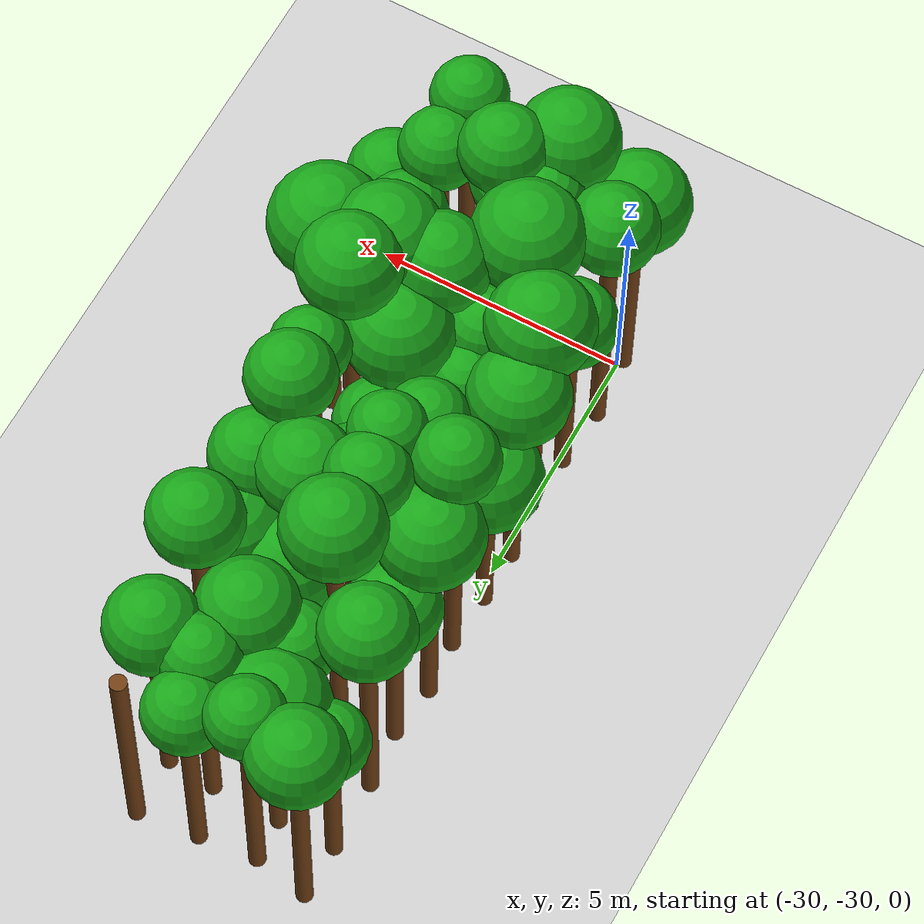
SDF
<sdf version="1.6">
 <world name="forest_world">
  <include><uri>model://sun</uri></include>
  <include><uri>model://ground_plane</uri></include>
  <model name="tree_0_trunk">
   <static>true</static>
   <pose>-30.06 -30.14 2.58 0 0 0</pose>
   <link name="link">
    <collision name="collision">
     <geometry><cylinder><radius>0.16</radius><length>5.17</length></cylinder></geometry>
    </collision>
    <visual name="visual">
     <geometry><cylinder><radius>0.16</radius><length>5.17</length></cylinder></geometry>
     <material><ambient>0.35 0.20 0.05 1</ambient><diffuse>0.45 0.25 0.08 1</diffuse></material>
    </visual>
   </link>
  </model>
  <model name="tree_0_leaf">
   <static>true</static>
   <pose>-30.06 -30.14 5.76 0 0 0</pose>
   <link name="link">
    <collision name="collision"><geometry><sphere><radius>0.98</radius></sphere></geometry></collision>
    <visual name="visual">
     <geometry><sphere><radius>0.98</radius></sphere></geometry>
     <material><ambient>0.05 0.45 0.05 1</ambient><diffuse>0.10 0.65 0.10 1</diffuse></material>
    </visual>
   </link>
  </model>
  <model name="tree_1_trunk">
   <static>true</static>
   <pose>-30.16 -28.88 3.14 0 0 0</pose>
   <link name="link">
    <collision name="collision">
     <geometry><cylinder><radius>0.16</radius><length>6.28</length></cylinder></geometry>
    </collision>
    <visual name="visual">
     <geometry><cylinder><radius>0.16</radius><length>6.28</length></cylinder></geometry>
     <material><ambient>0.35 0.20 0.05 1</ambient><diffuse>0.45 0.25 0.08 1</diffuse></material>
    </visual>
   </link>
  </model>
  <model name="tree_1_leaf">
   <static>true</static>
   <pose>-30.16 -28.88 6.79 0 0 0</pose>
   <link name="link">
    <collision name="collision"><geometry><sphere><radius>0.85</radius></sphere></geometry></collision>
    <visual name="visual">
     <geometry><sphere><radius>0.85</radius></sphere></geometry>
     <material><ambient>0.05 0.45 0.05 1</ambient><diffuse>0.10 0.65 0.10 1</diffuse></material>
    </visual>
   </link>
  </model>
  <model name="tree_2_trunk">
   <static>true</static>
   <pose>-30.05 -27.69 2.35 0 0 0</pose>
   <link name="link">
    <collision name="collision">
     <geometry><cylinder><radius>0.16</radius><length>4.70</length></cylinder></geometry>
    </collision>
    <visual name="visual">
     <geometry><cylinder><radius>0.16</radius><length>4.70</length></cylinder></geometry>
     <material><ambient>0.35 0.20 0.05 1</ambient><diffuse>0.45 0.25 0.08 1</diffuse></material>
    </visual>
   </link>
  </model>
  <model name="tree_2_leaf">
   <static>true</static>
   <pose>-30.05 -27.69 5.21 0 0 0</pose>
   <link name="link">
    <collision name="collision"><geometry><sphere><radius>0.85</radius></sphere></geometry></collision>
    <visual name="visual">
     <geometry><sphere><radius>0.85</radius></sphere></geometry>
     <material><ambient>0.05 0.45 0.05 1</ambient><diffuse>0.10 0.65 0.10 1</diffuse></material>
    </visual>
   </link>
  </model>
  <model name="tree_3_trunk">
   <static>true</static>
   <pose>-29.96 -26.59 3.09 0 0 0</pose>
   <link name="link">
    <collision name="collision">
     <geometry><cylinder><radius>0.16</radius><length>6.19</length></cylinder></geometry>
    </collision>
    <visual name="visual">
     <geometry><cylinder><radius>0.16</radius><length>6.19</length></cylinder></geometry>
     <material><ambient>0.35 0.20 0.05 1</ambient><diffuse>0.45 0.25 0.08 1</diffuse></material>
    </visual>
   </link>
  </model>
  <model name="tree_3_leaf">
   <static>true</static>
   <pose>-29.96 -26.59 6.78 0 0 0</pose>
   <link name="link">
    <collision name="collision"><geometry><sphere><radius>1.00</radius></sphere></geometry></collision>
    <visual name="visual">
     <geometry><sphere><radius>1.00</radius></sphere></geometry>
     <material><ambient>0.05 0.45 0.05 1</ambient><diffuse>0.10 0.65 0.10 1</diffuse></material>
    </visual>
   </link>
  </model>
  <model name="tree_4_trunk">
   <static>true</static>
   <pose>-30.14 -25.50 2.79 0 0 0</pose>
   <link name="link">
    <collision name="collision">
     <geometry><cylinder><radius>0.16</radius><length>5.59</length></cylinder></geometry>
    </collision>
    <visual name="visual">
     <geometry><cylinder><radius>0.16</radius><length>5.59</length></cylinder></geometry>
     <material><ambient>0.35 0.20 0.05 1</ambient><diffuse>0.45 0.25 0.08 1</diffuse></material>
    </visual>
   </link>
  </model>
  <model name="tree_4_leaf">
   <static>true</static>
   <pose>-30.14 -25.50 6.15 0 0 0</pose>
   <link name="link">
    <collision name="collision"><geometry><sphere><radius>0.94</radius></sphere></geometry></collision>
    <visual name="visual">
     <geometry><sphere><radius>0.94</radius></sphere></geometry>
     <material><ambient>0.05 0.45 0.05 1</ambient><diffuse>0.10 0.65 0.10 1</diffuse></material>
    </visual>
   </link>
  </model>
  <model name="tree_5_trunk">
   <static>true</static>
   <pose>-30.12 -24.48 2.09 0 0 0</pose>
   <link name="link">
    <collision name="collision">
     <geometry><cylinder><radius>0.16</radius><length>4.19</length></cylinder></geometry>
    </collision>
    <visual name="visual">
     <geometry><cylinder><radius>0.16</radius><length>4.19</length></cylinder></geometry>
     <material><ambient>0.35 0.20 0.05 1</ambient><diffuse>0.45 0.25 0.08 1</diffuse></material>
    </visual>
   </link>
  </model>
  <model name="tree_5_leaf">
   <static>true</static>
   <pose>-30.12 -24.48 4.79 0 0 0</pose>
   <link name="link">
    <collision name="collision"><geometry><sphere><radius>1.00</radius></sphere></geometry></collision>
    <visual name="visual">
     <geometry><sphere><radius>1.00</radius></sphere></geometry>
     <material><ambient>0.05 0.45 0.05 1</ambient><diffuse>0.10 0.65 0.10 1</diffuse></material>
    </visual>
   </link>
  </model>
  <model name="tree_6_trunk">
   <static>true</static>
   <pose>-30.05 -23.38 3.39 0 0 0</pose>
   <link name="link">
    <collision name="collision">
     <geometry><cylinder><radius>0.16</radius><length>6.77</length></cylinder></geometry>
    </collision>
    <visual name="visual">
     <geometry><cylinder><radius>0.16</radius><length>6.77</length></cylinder></geometry>
     <material><ambient>0.35 0.20 0.05 1</ambient><diffuse>0.45 0.25 0.08 1</diffuse></material>
    </visual>
   </link>
  </model>
  <model name="tree_6_leaf">
   <static>true</static>
   <pose>-30.05 -23.38 7.25 0 0 0</pose>
   <link name="link">
    <collision name="collision"><geometry><sphere><radius>0.79</radius></sphere></geometry></collision>
    <visual name="visual">
     <geometry><sphere><radius>0.79</radius></sphere></geometry>
     <material><ambient>0.05 0.45 0.05 1</ambient><diffuse>0.10 0.65 0.10 1</diffuse></material>
    </visual>
   </link>
  </model>
  <model name="tree_7_trunk">
   <static>true</static>
   <pose>-30.13 -22.36 2.84 0 0 0</pose>
   <link name="link">
    <collision name="collision">
     <geometry><cylinder><radius>0.16</radius><length>5.68</length></cylinder></geometry>
    </collision>
    <visual name="visual">
     <geometry><cylinder><radius>0.16</radius><length>5.68</length></cylinder></geometry>
     <material><ambient>0.35 0.20 0.05 1</ambient><diffuse>0.45 0.25 0.08 1</diffuse></material>
    </visual>
   </link>
  </model>
  <model name="tree_7_leaf">
   <static>true</static>
   <pose>-30.13 -22.36 6.27 0 0 0</pose>
   <link name="link">
    <collision name="collision"><geometry><sphere><radius>0.98</radius></sphere></geometry></collision>
    <visual name="visual">
     <geometry><sphere><radius>0.98</radius></sphere></geometry>
     <material><ambient>0.05 0.45 0.05 1</ambient><diffuse>0.10 0.65 0.10 1</diffuse></material>
    </visual>
   </link>
  </model>
  <model name="tree_8_trunk">
   <static>true</static>
   <pose>-30.00 -21.33 2.36 0 0 0</pose>
   <link name="link">
    <collision name="collision">
     <geometry><cylinder><radius>0.16</radius><length>4.72</length></cylinder></geometry>
    </collision>
    <visual name="visual">
     <geometry><cylinder><radius>0.16</radius><length>4.72</length></cylinder></geometry>
     <material><ambient>0.35 0.20 0.05 1</ambient><diffuse>0.45 0.25 0.08 1</diffuse></material>
    </visual>
   </link>
  </model>
  <model name="tree_8_leaf">
   <static>true</static>
   <pose>-30.00 -21.33 5.23 0 0 0</pose>
   <link name="link">
    <collision name="collision"><geometry><sphere><radius>0.86</radius></sphere></geometry></collision>
    <visual name="visual">
     <geometry><sphere><radius>0.86</radius></sphere></geometry>
     <material><ambient>0.05 0.45 0.05 1</ambient><diffuse>0.10 0.65 0.10 1</diffuse></material>
    </visual>
   </link>
  </model>
  <model name="tree_9_trunk">
   <static>true</static>
   <pose>-30.10 -20.23 2.94 0 0 0</pose>
   <link name="link">
    <collision name="collision">
     <geometry><cylinder><radius>0.16</radius><length>5.88</length></cylinder></geometry>
    </collision>
    <visual name="visual">
     <geometry><cylinder><radius>0.16</radius><length>5.88</length></cylinder></geometry>
     <material><ambient>0.35 0.20 0.05 1</ambient><diffuse>0.45 0.25 0.08 1</diffuse></material>
    </visual>
   </link>
  </model>
  <model name="tree_9_leaf">
   <static>true</static>
   <pose>-30.10 -20.23 6.40 0 0 0</pose>
   <link name="link">
    <collision name="collision"><geometry><sphere><radius>0.87</radius></sphere></geometry></collision>
    <visual name="visual">
     <geometry><sphere><radius>0.87</radius></sphere></geometry>
     <material><ambient>0.05 0.45 0.05 1</ambient><diffuse>0.10 0.65 0.10 1</diffuse></material>
    </visual>
   </link>
  </model>
  <model name="tree_10_trunk">
   <static>true</static>
   <pose>-30.13 -18.85 2.13 0 0 0</pose>
   <link name="link">
    <collision name="collision">
     <geometry><cylinder><radius>0.16</radius><length>4.27</length></cylinder></geometry>
    </collision>
    <visual name="visual">
     <geometry><cylinder><radius>0.16</radius><length>4.27</length></cylinder></geometry>
     <material><ambient>0.35 0.20 0.05 1</ambient><diffuse>0.45 0.25 0.08 1</diffuse></material>
    </visual>
   </link>
  </model>
  <model name="tree_10_leaf">
   <static>true</static>
   <pose>-30.13 -18.85 4.70 0 0 0</pose>
   <link name="link">
    <collision name="collision"><geometry><sphere><radius>0.72</radius></sphere></geometry></collision>
    <visual name="visual">
     <geometry><sphere><radius>0.72</radius></sphere></geometry>
     <material><ambient>0.05 0.45 0.05 1</ambient><diffuse>0.10 0.65 0.10 1</diffuse></material>
    </visual>
   </link>
  </model>
  <model name="tree_11_trunk">
   <static>true</static>
   <pose>-30.11 -17.81 2.78 0 0 0</pose>
   <link name="link">
    <collision name="collision">
     <geometry><cylinder><radius>0.16</radius><length>5.57</length></cylinder></geometry>
    </collision>
    <visual name="visual">
     <geometry><cylinder><radius>0.16</radius><length>5.57</length></cylinder></geometry>
     <material><ambient>0.35 0.20 0.05 1</ambient><diffuse>0.45 0.25 0.08 1</diffuse></material>
    </visual>
   </link>
  </model>
  <model name="tree_11_leaf">
   <static>true</static>
   <pose>-30.11 -17.81 6.11 0 0 0</pose>
   <link name="link">
    <collision name="collision"><geometry><sphere><radius>0.90</radius></sphere></geometry></collision>
    <visual name="visual">
     <geometry><sphere><radius>0.90</radius></sphere></geometry>
     <material><ambient>0.05 0.45 0.05 1</ambient><diffuse>0.10 0.65 0.10 1</diffuse></material>
    </visual>
   </link>
  </model>
  <model name="tree_55_trunk">
   <static>true</static>
   <pose>-28.73 -29.90 3.30 0 0 0</pose>
   <link name="link">
    <collision name="collision">
     <geometry><cylinder><radius>0.16</radius><length>6.59</length></cylinder></geometry>
    </collision>
    <visual name="visual">
     <geometry><cylinder><radius>0.16</radius><length>6.59</length></cylinder></geometry>
     <material><ambient>0.35 0.20 0.05 1</ambient><diffuse>0.45 0.25 0.08 1</diffuse></material>
    </visual>
   </link>
  </model>
  <model name="tree_55_leaf">
   <static>true</static>
   <pose>-28.73 -29.90 7.17 0 0 0</pose>
   <link name="link">
    <collision name="collision"><geometry><sphere><radius>0.96</radius></sphere></geometry></collision>
    <visual name="visual">
     <geometry><sphere><radius>0.96</radius></sphere></geometry>
     <material><ambient>0.05 0.45 0.05 1</ambient><diffuse>0.10 0.65 0.10 1</diffuse></material>
    </visual>
   </link>
  </model>
  <model name="tree_56_trunk">
   <static>true</static>
   <pose>-28.81 -28.86 3.19 0 0 0</pose>
   <link name="link">
    <collision name="collision">
     <geometry><cylinder><radius>0.16</radius><length>6.38</length></cylinder></geometry>
    </collision>
    <visual name="visual">
     <geometry><cylinder><radius>0.16</radius><length>6.38</length></cylinder></geometry>
     <material><ambient>0.35 0.20 0.05 1</ambient><diffuse>0.45 0.25 0.08 1</diffuse></material>
    </visual>
   </link>
  </model>
  <model name="tree_56_leaf">
   <static>true</static>
   <pose>-28.81 -28.86 6.83 0 0 0</pose>
   <link name="link">
    <collision name="collision"><geometry><sphere><radius>0.74</radius></sphere></geometry></collision>
    <visual name="visual">
     <geometry><sphere><radius>0.74</radius></sphere></geometry>
     <material><ambient>0.05 0.45 0.05 1</ambient><diffuse>0.10 0.65 0.10 1</diffuse></material>
    </visual>
   </link>
  </model>
  <model name="tree_57_trunk">
   <static>true</static>
   <pose>-29.00 -27.91 3.19 0 0 0</pose>
   <link name="link">
    <collision name="collision">
     <geometry><cylinder><radius>0.16</radius><length>6.38</length></cylinder></geometry>
    </collision>
    <visual name="visual">
     <geometry><cylinder><radius>0.16</radius><length>6.38</length></cylinder></geometry>
     <material><ambient>0.35 0.20 0.05 1</ambient><diffuse>0.45 0.25 0.08 1</diffuse></material>
    </visual>
   </link>
  </model>
  <model name="tree_57_leaf">
   <static>true</static>
   <pose>-29.00 -27.91 7.01 0 0 0</pose>
   <link name="link">
    <collision name="collision"><geometry><sphere><radius>1.05</radius></sphere></geometry></collision>
    <visual name="visual">
     <geometry><sphere><radius>1.05</radius></sphere></geometry>
     <material><ambient>0.05 0.45 0.05 1</ambient><diffuse>0.10 0.65 0.10 1</diffuse></material>
    </visual>
   </link>
  </model>
  <model name="tree_58_trunk">
   <static>true</static>
   <pose>-28.90 -26.54 2.71 0 0 0</pose>
   <link name="link">
    <collision name="collision">
     <geometry><cylinder><radius>0.16</radius><length>5.42</length></cylinder></geometry>
    </collision>
    <visual name="visual">
     <geometry><cylinder><radius>0.16</radius><length>5.42</length></cylinder></geometry>
     <material><ambient>0.35 0.20 0.05 1</ambient><diffuse>0.45 0.25 0.08 1</diffuse></material>
    </visual>
   </link>
  </model>
  <model name="tree_58_leaf">
   <static>true</static>
   <pose>-28.90 -26.54 5.88 0 0 0</pose>
   <link name="link">
    <collision name="collision"><geometry><sphere><radius>0.76</radius></sphere></geometry></collision>
    <visual name="visual">
     <geometry><sphere><radius>0.76</radius></sphere></geometry>
     <material><ambient>0.05 0.45 0.05 1</ambient><diffuse>0.10 0.65 0.10 1</diffuse></material>
    </visual>
   </link>
  </model>
  <model name="tree_59_trunk">
   <static>true</static>
   <pose>-29.00 -25.64 2.53 0 0 0</pose>
   <link name="link">
    <collision name="collision">
     <geometry><cylinder><radius>0.16</radius><length>5.06</length></cylinder></geometry>
    </collision>
    <visual name="visual">
     <geometry><cylinder><radius>0.16</radius><length>5.06</length></cylinder></geometry>
     <material><ambient>0.35 0.20 0.05 1</ambient><diffuse>0.45 0.25 0.08 1</diffuse></material>
    </visual>
   </link>
  </model>
  <model name="tree_59_leaf">
   <static>true</static>
   <pose>-29.00 -25.64 5.50 0 0 0</pose>
   <link name="link">
    <collision name="collision"><geometry><sphere><radius>0.72</radius></sphere></geometry></collision>
    <visual name="visual">
     <geometry><sphere><radius>0.72</radius></sphere></geometry>
     <material><ambient>0.05 0.45 0.05 1</ambient><diffuse>0.10 0.65 0.10 1</diffuse></material>
    </visual>
   </link>
  </model>
  <model name="tree_60_trunk">
   <static>true</static>
   <pose>-28.97 -24.34 2.83 0 0 0</pose>
   <link name="link">
    <collision name="collision">
     <geometry><cylinder><radius>0.16</radius><length>5.65</length></cylinder></geometry>
    </collision>
    <visual name="visual">
     <geometry><cylinder><radius>0.16</radius><length>5.65</length></cylinder></geometry>
     <material><ambient>0.35 0.20 0.05 1</ambient><diffuse>0.45 0.25 0.08 1</diffuse></material>
    </visual>
   </link>
  </model>
  <model name="tree_60_leaf">
   <static>true</static>
   <pose>-28.97 -24.34 6.11 0 0 0</pose>
   <link name="link">
    <collision name="collision"><geometry><sphere><radius>0.77</radius></sphere></geometry></collision>
    <visual name="visual">
     <geometry><sphere><radius>0.77</radius></sphere></geometry>
     <material><ambient>0.05 0.45 0.05 1</ambient><diffuse>0.10 0.65 0.10 1</diffuse></material>
    </visual>
   </link>
  </model>
  <model name="tree_61_trunk">
   <static>true</static>
   <pose>-28.79 -23.30 3.43 0 0 0</pose>
   <link name="link">
    <collision name="collision">
     <geometry><cylinder><radius>0.16</radius><length>6.85</length></cylinder></geometry>
    </collision>
    <visual name="visual">
     <geometry><cylinder><radius>0.16</radius><length>6.85</length></cylinder></geometry>
     <material><ambient>0.35 0.20 0.05 1</ambient><diffuse>0.45 0.25 0.08 1</diffuse></material>
    </visual>
   </link>
  </model>
  <model name="tree_61_leaf">
   <static>true</static>
   <pose>-28.79 -23.30 7.28 0 0 0</pose>
   <link name="link">
    <collision name="collision"><geometry><sphere><radius>0.71</radius></sphere></geometry></collision>
    <visual name="visual">
     <geometry><sphere><radius>0.71</radius></sphere></geometry>
     <material><ambient>0.05 0.45 0.05 1</ambient><diffuse>0.10 0.65 0.10 1</diffuse></material>
    </visual>
   </link>
  </model>
  <model name="tree_62_trunk">
   <static>true</static>
   <pose>-28.91 -22.41 3.39 0 0 0</pose>
   <link name="link">
    <collision name="collision">
     <geometry><cylinder><radius>0.16</radius><length>6.79</length></cylinder></geometry>
    </collision>
    <visual name="visual">
     <geometry><cylinder><radius>0.16</radius><length>6.79</length></cylinder></geometry>
     <material><ambient>0.35 0.20 0.05 1</ambient><diffuse>0.45 0.25 0.08 1</diffuse></material>
    </visual>
   </link>
  </model>
  <model name="tree_62_leaf">
   <static>true</static>
   <pose>-28.91 -22.41 7.25 0 0 0</pose>
   <link name="link">
    <collision name="collision"><geometry><sphere><radius>0.78</radius></sphere></geometry></collision>
    <visual name="visual">
     <geometry><sphere><radius>0.78</radius></sphere></geometry>
     <material><ambient>0.05 0.45 0.05 1</ambient><diffuse>0.10 0.65 0.10 1</diffuse></material>
    </visual>
   </link>
  </model>
  <model name="tree_63_trunk">
   <static>true</static>
   <pose>-28.93 -21.19 3.44 0 0 0</pose>
   <link name="link">
    <collision name="collision">
     <geometry><cylinder><radius>0.16</radius><length>6.89</length></cylinder></geometry>
    </collision>
    <visual name="visual">
     <geometry><cylinder><radius>0.16</radius><length>6.89</length></cylinder></geometry>
     <material><ambient>0.35 0.20 0.05 1</ambient><diffuse>0.45 0.25 0.08 1</diffuse></material>
    </visual>
   </link>
  </model>
  <model name="tree_63_leaf">
   <static>true</static>
   <pose>-28.93 -21.19 7.45 0 0 0</pose>
   <link name="link">
    <collision name="collision"><geometry><sphere><radius>0.94</radius></sphere></geometry></collision>
    <visual name="visual">
     <geometry><sphere><radius>0.94</radius></sphere></geometry>
     <material><ambient>0.05 0.45 0.05 1</ambient><diffuse>0.10 0.65 0.10 1</diffuse></material>
    </visual>
   </link>
  </model>
  <model name="tree_64_trunk">
   <static>true</static>
   <pose>-28.81 -19.97 2.31 0 0 0</pose>
   <link name="link">
    <collision name="collision">
     <geometry><cylinder><radius>0.16</radius><length>4.63</length></cylinder></geometry>
    </collision>
    <visual name="visual">
     <geometry><cylinder><radius>0.16</radius><length>4.63</length></cylinder></geometry>
     <material><ambient>0.35 0.20 0.05 1</ambient><diffuse>0.45 0.25 0.08 1</diffuse></material>
    </visual>
   </link>
  </model>
  <model name="tree_64_leaf">
   <static>true</static>
   <pose>-28.81 -19.97 5.10 0 0 0</pose>
   <link name="link">
    <collision name="collision"><geometry><sphere><radius>0.79</radius></sphere></geometry></collision>
    <visual name="visual">
     <geometry><sphere><radius>0.79</radius></sphere></geometry>
     <material><ambient>0.05 0.45 0.05 1</ambient><diffuse>0.10 0.65 0.10 1</diffuse></material>
    </visual>
   </link>
  </model>
  <model name="tree_65_trunk">
   <static>true</static>
   <pose>-29.01 -18.82 2.16 0 0 0</pose>
   <link name="link">
    <collision name="collision">
     <geometry><cylinder><radius>0.16</radius><length>4.33</length></cylinder></geometry>
    </collision>
    <visual name="visual">
     <geometry><cylinder><radius>0.16</radius><length>4.33</length></cylinder></geometry>
     <material><ambient>0.35 0.20 0.05 1</ambient><diffuse>0.45 0.25 0.08 1</diffuse></material>
    </visual>
   </link>
  </model>
  <model name="tree_65_leaf">
   <static>true</static>
   <pose>-29.01 -18.82 4.97 0 0 0</pose>
   <link name="link">
    <collision name="collision"><geometry><sphere><radius>1.08</radius></sphere></geometry></collision>
    <visual name="visual">
     <geometry><sphere><radius>1.08</radius></sphere></geometry>
     <material><ambient>0.05 0.45 0.05 1</ambient><diffuse>0.10 0.65 0.10 1</diffuse></material>
    </visual>
   </link>
  </model>
  <model name="tree_66_trunk">
   <static>true</static>
   <pose>-29.04 -18.00 2.86 0 0 0</pose>
   <link name="link">
    <collision name="collision">
     <geometry><cylinder><radius>0.16</radius><length>5.73</length></cylinder></geometry>
    </collision>
    <visual name="visual">
     <geometry><cylinder><radius>0.16</radius><length>5.73</length></cylinder></geometry>
     <material><ambient>0.35 0.20 0.05 1</ambient><diffuse>0.45 0.25 0.08 1</diffuse></material>
    </visual>
   </link>
  </model>
  <model name="tree_66_leaf">
   <static>true</static>
   <pose>-29.04 -18.00 6.17 0 0 0</pose>
   <link name="link">
    <collision name="collision"><geometry><sphere><radius>0.73</radius></sphere></geometry></collision>
    <visual name="visual">
     <geometry><sphere><radius>0.73</radius></sphere></geometry>
     <material><ambient>0.05 0.45 0.05 1</ambient><diffuse>0.10 0.65 0.10 1</diffuse></material>
    </visual>
   </link>
  </model>
  <model name="tree_110_trunk">
   <static>true</static>
   <pose>-27.72 -30.18 2.09 0 0 0</pose>
   <link name="link">
    <collision name="collision">
     <geometry><cylinder><radius>0.16</radius><length>4.19</length></cylinder></geometry>
    </collision>
    <visual name="visual">
     <geometry><cylinder><radius>0.16</radius><length>4.19</length></cylinder></geometry>
     <material><ambient>0.35 0.20 0.05 1</ambient><diffuse>0.45 0.25 0.08 1</diffuse></material>
    </visual>
   </link>
  </model>
  <model name="tree_110_leaf">
   <static>true</static>
   <pose>-27.72 -30.18 4.77 0 0 0</pose>
   <link name="link">
    <collision name="collision"><geometry><sphere><radius>0.97</radius></sphere></geometry></collision>
    <visual name="visual">
     <geometry><sphere><radius>0.97</radius></sphere></geometry>
     <material><ambient>0.05 0.45 0.05 1</ambient><diffuse>0.10 0.65 0.10 1</diffuse></material>
    </visual>
   </link>
  </model>
  <model name="tree_111_trunk">
   <static>true</static>
   <pose>-27.91 -29.05 3.46 0 0 0</pose>
   <link name="link">
    <collision name="collision">
     <geometry><cylinder><radius>0.16</radius><length>6.93</length></cylinder></geometry>
    </collision>
    <visual name="visual">
     <geometry><cylinder><radius>0.16</radius><length>6.93</length></cylinder></geometry>
     <material><ambient>0.35 0.20 0.05 1</ambient><diffuse>0.45 0.25 0.08 1</diffuse></material>
    </visual>
   </link>
  </model>
  <model name="tree_111_leaf">
   <static>true</static>
   <pose>-27.91 -29.05 7.43 0 0 0</pose>
   <link name="link">
    <collision name="collision"><geometry><sphere><radius>0.83</radius></sphere></geometry></collision>
    <visual name="visual">
     <geometry><sphere><radius>0.83</radius></sphere></geometry>
     <material><ambient>0.05 0.45 0.05 1</ambient><diffuse>0.10 0.65 0.10 1</diffuse></material>
    </visual>
   </link>
  </model>
  <model name="tree_112_trunk">
   <static>true</static>
   <pose>-27.86 -27.77 2.00 0 0 0</pose>
   <link name="link">
    <collision name="collision">
     <geometry><cylinder><radius>0.16</radius><length>4.00</length></cylinder></geometry>
    </collision>
    <visual name="visual">
     <geometry><cylinder><radius>0.16</radius><length>4.00</length></cylinder></geometry>
     <material><ambient>0.35 0.20 0.05 1</ambient><diffuse>0.45 0.25 0.08 1</diffuse></material>
    </visual>
   </link>
  </model>
  <model name="tree_112_leaf">
   <static>true</static>
   <pose>-27.86 -27.77 4.64 0 0 0</pose>
   <link name="link">
    <collision name="collision"><geometry><sphere><radius>1.06</radius></sphere></geometry></collision>
    <visual name="visual">
     <geometry><sphere><radius>1.06</radius></sphere></geometry>
     <material><ambient>0.05 0.45 0.05 1</ambient><diffuse>0.10 0.65 0.10 1</diffuse></material>
    </visual>
   </link>
  </model>
  <model name="tree_113_trunk">
   <static>true</static>
   <pose>-27.88 -26.84 3.13 0 0 0</pose>
   <link name="link">
    <collision name="collision">
     <geometry><cylinder><radius>0.16</radius><length>6.26</length></cylinder></geometry>
    </collision>
    <visual name="visual">
     <geometry><cylinder><radius>0.16</radius><length>6.26</length></cylinder></geometry>
     <material><ambient>0.35 0.20 0.05 1</ambient><diffuse>0.45 0.25 0.08 1</diffuse></material>
    </visual>
   </link>
  </model>
  <model name="tree_113_leaf">
   <static>true</static>
   <pose>-27.88 -26.84 6.82 0 0 0</pose>
   <link name="link">
    <collision name="collision"><geometry><sphere><radius>0.93</radius></sphere></geometry></collision>
    <visual name="visual">
     <geometry><sphere><radius>0.93</radius></sphere></geometry>
     <material><ambient>0.05 0.45 0.05 1</ambient><diffuse>0.10 0.65 0.10 1</diffuse></material>
    </visual>
   </link>
  </model>
  <model name="tree_114_trunk">
   <static>true</static>
   <pose>-27.73 -25.58 2.79 0 0 0</pose>
   <link name="link">
    <collision name="collision">
     <geometry><cylinder><radius>0.16</radius><length>5.58</length></cylinder></geometry>
    </collision>
    <visual name="visual">
     <geometry><cylinder><radius>0.16</radius><length>5.58</length></cylinder></geometry>
     <material><ambient>0.35 0.20 0.05 1</ambient><diffuse>0.45 0.25 0.08 1</diffuse></material>
    </visual>
   </link>
  </model>
  <model name="tree_114_leaf">
   <static>true</static>
   <pose>-27.73 -25.58 6.19 0 0 0</pose>
   <link name="link">
    <collision name="collision"><geometry><sphere><radius>1.01</radius></sphere></geometry></collision>
    <visual name="visual">
     <geometry><sphere><radius>1.01</radius></sphere></geometry>
     <material><ambient>0.05 0.45 0.05 1</ambient><diffuse>0.10 0.65 0.10 1</diffuse></material>
    </visual>
   </link>
  </model>
  <model name="tree_115_trunk">
   <static>true</static>
   <pose>-27.90 -24.61 2.03 0 0 0</pose>
   <link name="link">
    <collision name="collision">
     <geometry><cylinder><radius>0.16</radius><length>4.07</length></cylinder></geometry>
    </collision>
    <visual name="visual">
     <geometry><cylinder><radius>0.16</radius><length>4.07</length></cylinder></geometry>
     <material><ambient>0.35 0.20 0.05 1</ambient><diffuse>0.45 0.25 0.08 1</diffuse></material>
    </visual>
   </link>
  </model>
  <model name="tree_115_leaf">
   <static>true</static>
   <pose>-27.90 -24.61 4.59 0 0 0</pose>
   <link name="link">
    <collision name="collision"><geometry><sphere><radius>0.87</radius></sphere></geometry></collision>
    <visual name="visual">
     <geometry><sphere><radius>0.87</radius></sphere></geometry>
     <material><ambient>0.05 0.45 0.05 1</ambient><diffuse>0.10 0.65 0.10 1</diffuse></material>
    </visual>
   </link>
  </model>
  <model name="tree_116_trunk">
   <static>true</static>
   <pose>-27.92 -23.53 2.10 0 0 0</pose>
   <link name="link">
    <collision name="collision">
     <geometry><cylinder><radius>0.16</radius><length>4.20</length></cylinder></geometry>
    </collision>
    <visual name="visual">
     <geometry><cylinder><radius>0.16</radius><length>4.20</length></cylinder></geometry>
     <material><ambient>0.35 0.20 0.05 1</ambient><diffuse>0.45 0.25 0.08 1</diffuse></material>
    </visual>
   </link>
  </model>
  <model name="tree_116_leaf">
   <static>true</static>
   <pose>-27.92 -23.53 4.69 0 0 0</pose>
   <link name="link">
    <collision name="collision"><geometry><sphere><radius>0.82</radius></sphere></geometry></collision>
    <visual name="visual">
     <geometry><sphere><radius>0.82</radius></sphere></geometry>
     <material><ambient>0.05 0.45 0.05 1</ambient><diffuse>0.10 0.65 0.10 1</diffuse></material>
    </visual>
   </link>
  </model>
  <model name="tree_117_trunk">
   <static>true</static>
   <pose>-27.71 -22.36 3.00 0 0 0</pose>
   <link name="link">
    <collision name="collision">
     <geometry><cylinder><radius>0.16</radius><length>5.99</length></cylinder></geometry>
    </collision>
    <visual name="visual">
     <geometry><cylinder><radius>0.16</radius><length>5.99</length></cylinder></geometry>
     <material><ambient>0.35 0.20 0.05 1</ambient><diffuse>0.45 0.25 0.08 1</diffuse></material>
    </visual>
   </link>
  </model>
  <model name="tree_117_leaf">
   <static>true</static>
   <pose>-27.71 -22.36 6.53 0 0 0</pose>
   <link name="link">
    <collision name="collision"><geometry><sphere><radius>0.90</radius></sphere></geometry></collision>
    <visual name="visual">
     <geometry><sphere><radius>0.90</radius></sphere></geometry>
     <material><ambient>0.05 0.45 0.05 1</ambient><diffuse>0.10 0.65 0.10 1</diffuse></material>
    </visual>
   </link>
  </model>
  <model name="tree_118_trunk">
   <static>true</static>
   <pose>-27.91 -21.31 2.21 0 0 0</pose>
   <link name="link">
    <collision name="collision">
     <geometry><cylinder><radius>0.16</radius><length>4.43</length></cylinder></geometry>
    </collision>
    <visual name="visual">
     <geometry><cylinder><radius>0.16</radius><length>4.43</length></cylinder></geometry>
     <material><ambient>0.35 0.20 0.05 1</ambient><diffuse>0.45 0.25 0.08 1</diffuse></material>
    </visual>
   </link>
  </model>
  <model name="tree_118_leaf">
   <static>true</static>
   <pose>-27.91 -21.31 5.03 0 0 0</pose>
   <link name="link">
    <collision name="collision"><geometry><sphere><radius>1.00</radius></sphere></geometry></collision>
    <visual name="visual">
     <geometry><sphere><radius>1.00</radius></sphere></geometry>
     <material><ambient>0.05 0.45 0.05 1</ambient><diffuse>0.10 0.65 0.10 1</diffuse></material>
    </visual>
   </link>
  </model>
  <model name="tree_119_trunk">
   <static>true</static>
   <pose>-27.94 -19.94 2.53 0 0 0</pose>
   <link name="link">
    <collision name="collision">
     <geometry><cylinder><radius>0.16</radius><length>5.06</length></cylinder></geometry>
    </collision>
    <visual name="visual">
     <geometry><cylinder><radius>0.16</radius><length>5.06</length></cylinder></geometry>
     <material><ambient>0.35 0.20 0.05 1</ambient><diffuse>0.45 0.25 0.08 1</diffuse></material>
    </visual>
   </link>
  </model>
  <model name="tree_119_leaf">
   <static>true</static>
   <pose>-27.94 -19.94 5.62 0 0 0</pose>
   <link name="link">
    <collision name="collision"><geometry><sphere><radius>0.94</radius></sphere></geometry></collision>
    <visual name="visual">
     <geometry><sphere><radius>0.94</radius></sphere></geometry>
     <material><ambient>0.05 0.45 0.05 1</ambient><diffuse>0.10 0.65 0.10 1</diffuse></material>
    </visual>
   </link>
  </model>
  <model name="tree_120_trunk">
   <static>true</static>
   <pose>-27.66 -18.82 2.57 0 0 0</pose>
   <link name="link">
    <collision name="collision">
     <geometry><cylinder><radius>0.16</radius><length>5.13</length></cylinder></geometry>
    </collision>
    <visual name="visual">
     <geometry><cylinder><radius>0.16</radius><length>5.13</length></cylinder></geometry>
     <material><ambient>0.35 0.20 0.05 1</ambient><diffuse>0.45 0.25 0.08 1</diffuse></material>
    </visual>
   </link>
  </model>
  <model name="tree_120_leaf">
   <static>true</static>
   <pose>-27.66 -18.82 5.60 0 0 0</pose>
   <link name="link">
    <collision name="collision"><geometry><sphere><radius>0.77</radius></sphere></geometry></collision>
    <visual name="visual">
     <geometry><sphere><radius>0.77</radius></sphere></geometry>
     <material><ambient>0.05 0.45 0.05 1</ambient><diffuse>0.10 0.65 0.10 1</diffuse></material>
    </visual>
   </link>
  </model>
  <model name="tree_121_trunk">
   <static>true</static>
   <pose>-27.91 -17.87 2.48 0 0 0</pose>
   <link name="link">
    <collision name="collision">
     <geometry><cylinder><radius>0.16</radius><length>4.97</length></cylinder></geometry>
    </collision>
    <visual name="visual">
     <geometry><cylinder><radius>0.16</radius><length>4.97</length></cylinder></geometry>
     <material><ambient>0.35 0.20 0.05 1</ambient><diffuse>0.45 0.25 0.08 1</diffuse></material>
    </visual>
   </link>
  </model>
  <model name="tree_121_leaf">
   <static>true</static>
   <pose>-27.91 -17.87 5.43 0 0 0</pose>
   <link name="link">
    <collision name="collision"><geometry><sphere><radius>0.77</radius></sphere></geometry></collision>
    <visual name="visual">
     <geometry><sphere><radius>0.77</radius></sphere></geometry>
     <material><ambient>0.05 0.45 0.05 1</ambient><diffuse>0.10 0.65 0.10 1</diffuse></material>
    </visual>
   </link>
  </model>
  <model name="tree_165_trunk">
   <static>true</static>
   <pose>-26.79 -29.87 3.37 0 0 0</pose>
   <link name="link">
    <collision name="collision">
     <geometry><cylinder><radius>0.16</radius><length>6.74</length></cylinder></geometry>
    </collision>
    <visual name="visual">
     <geometry><cylinder><radius>0.16</radius><length>6.74</length></cylinder></geometry>
     <material><ambient>0.35 0.20 0.05 1</ambient><diffuse>0.45 0.25 0.08 1</diffuse></material>
    </visual>
   </link>
  </model>
  <model name="tree_165_leaf">
   <static>true</static>
   <pose>-26.79 -29.87 7.17 0 0 0</pose>
   <link name="link">
    <collision name="collision"><geometry><sphere><radius>0.72</radius></sphere></geometry></collision>
    <visual name="visual">
     <geometry><sphere><radius>0.72</radius></sphere></geometry>
     <material><ambient>0.05 0.45 0.05 1</ambient><diffuse>0.10 0.65 0.10 1</diffuse></material>
    </visual>
   </link>
  </model>
  <model name="tree_166_trunk">
   <static>true</static>
   <pose>-26.78 -28.84 3.20 0 0 0</pose>
   <link name="link">
    <collision name="collision">
     <geometry><cylinder><radius>0.16</radius><length>6.40</length></cylinder></geometry>
    </collision>
    <visual name="visual">
     <geometry><cylinder><radius>0.16</radius><length>6.40</length></cylinder></geometry>
     <material><ambient>0.35 0.20 0.05 1</ambient><diffuse>0.45 0.25 0.08 1</diffuse></material>
    </visual>
   </link>
  </model>
  <model name="tree_166_leaf">
   <static>true</static>
   <pose>-26.78 -28.84 6.87 0 0 0</pose>
   <link name="link">
    <collision name="collision"><geometry><sphere><radius>0.77</radius></sphere></geometry></collision>
    <visual name="visual">
     <geometry><sphere><radius>0.77</radius></sphere></geometry>
     <material><ambient>0.05 0.45 0.05 1</ambient><diffuse>0.10 0.65 0.10 1</diffuse></material>
    </visual>
   </link>
  </model>
  <model name="tree_167_trunk">
   <static>true</static>
   <pose>-26.68 -27.72 2.87 0 0 0</pose>
   <link name="link">
    <collision name="collision">
     <geometry><cylinder><radius>0.16</radius><length>5.74</length></cylinder></geometry>
    </collision>
    <visual name="visual">
     <geometry><cylinder><radius>0.16</radius><length>5.74</length></cylinder></geometry>
     <material><ambient>0.35 0.20 0.05 1</ambient><diffuse>0.45 0.25 0.08 1</diffuse></material>
    </visual>
   </link>
  </model>
  <model name="tree_167_leaf">
   <static>true</static>
   <pose>-26.68 -27.72 6.21 0 0 0</pose>
   <link name="link">
    <collision name="collision"><geometry><sphere><radius>0.79</radius></sphere></geometry></collision>
    <visual name="visual">
     <geometry><sphere><radius>0.79</radius></sphere></geometry>
     <material><ambient>0.05 0.45 0.05 1</ambient><diffuse>0.10 0.65 0.10 1</diffuse></material>
    </visual>
   </link>
  </model>
  <model name="tree_168_trunk">
   <static>true</static>
   <pose>-26.86 -26.74 3.16 0 0 0</pose>
   <link name="link">
    <collision name="collision">
     <geometry><cylinder><radius>0.16</radius><length>6.32</length></cylinder></geometry>
    </collision>
    <visual name="visual">
     <geometry><cylinder><radius>0.16</radius><length>6.32</length></cylinder></geometry>
     <material><ambient>0.35 0.20 0.05 1</ambient><diffuse>0.45 0.25 0.08 1</diffuse></material>
    </visual>
   </link>
  </model>
  <model name="tree_168_leaf">
   <static>true</static>
   <pose>-26.86 -26.74 6.95 0 0 0</pose>
   <link name="link">
    <collision name="collision"><geometry><sphere><radius>1.04</radius></sphere></geometry></collision>
    <visual name="visual">
     <geometry><sphere><radius>1.04</radius></sphere></geometry>
     <material><ambient>0.05 0.45 0.05 1</ambient><diffuse>0.10 0.65 0.10 1</diffuse></material>
    </visual>
   </link>
  </model>
  <model name="tree_169_trunk">
   <static>true</static>
   <pose>-26.68 -25.74 3.42 0 0 0</pose>
   <link name="link">
    <collision name="collision">
     <geometry><cylinder><radius>0.16</radius><length>6.83</length></cylinder></geometry>
    </collision>
    <visual name="visual">
     <geometry><cylinder><radius>0.16</radius><length>6.83</length></cylinder></geometry>
     <material><ambient>0.35 0.20 0.05 1</ambient><diffuse>0.45 0.25 0.08 1</diffuse></material>
    </visual>
   </link>
  </model>
  <model name="tree_169_leaf">
   <static>true</static>
   <pose>-26.68 -25.74 7.40 0 0 0</pose>
   <link name="link">
    <collision name="collision"><geometry><sphere><radius>0.96</radius></sphere></geometry></collision>
    <visual name="visual">
     <geometry><sphere><radius>0.96</radius></sphere></geometry>
     <material><ambient>0.05 0.45 0.05 1</ambient><diffuse>0.10 0.65 0.10 1</diffuse></material>
    </visual>
   </link>
  </model>
  <model name="tree_170_trunk">
   <static>true</static>
   <pose>-26.67 -24.36 3.10 0 0 0</pose>
   <link name="link">
    <collision name="collision">
     <geometry><cylinder><radius>0.16</radius><length>6.20</length></cylinder></geometry>
    </collision>
    <visual name="visual">
     <geometry><cylinder><radius>0.16</radius><length>6.20</length></cylinder></geometry>
     <material><ambient>0.35 0.20 0.05 1</ambient><diffuse>0.45 0.25 0.08 1</diffuse></material>
    </visual>
   </link>
  </model>
  <model name="tree_170_leaf">
   <static>true</static>
   <pose>-26.67 -24.36 6.65 0 0 0</pose>
   <link name="link">
    <collision name="collision"><geometry><sphere><radius>0.74</radius></sphere></geometry></collision>
    <visual name="visual">
     <geometry><sphere><radius>0.74</radius></sphere></geometry>
     <material><ambient>0.05 0.45 0.05 1</ambient><diffuse>0.10 0.65 0.10 1</diffuse></material>
    </visual>
   </link>
  </model>
  <model name="tree_171_trunk">
   <static>true</static>
   <pose>-26.81 -23.48 3.33 0 0 0</pose>
   <link name="link">
    <collision name="collision">
     <geometry><cylinder><radius>0.16</radius><length>6.67</length></cylinder></geometry>
    </collision>
    <visual name="visual">
     <geometry><cylinder><radius>0.16</radius><length>6.67</length></cylinder></geometry>
     <material><ambient>0.35 0.20 0.05 1</ambient><diffuse>0.45 0.25 0.08 1</diffuse></material>
    </visual>
   </link>
  </model>
  <model name="tree_171_leaf">
   <static>true</static>
   <pose>-26.81 -23.48 7.16 0 0 0</pose>
   <link name="link">
    <collision name="collision"><geometry><sphere><radius>0.83</radius></sphere></geometry></collision>
    <visual name="visual">
     <geometry><sphere><radius>0.83</radius></sphere></geometry>
     <material><ambient>0.05 0.45 0.05 1</ambient><diffuse>0.10 0.65 0.10 1</diffuse></material>
    </visual>
   </link>
  </model>
  <model name="tree_172_trunk">
   <static>true</static>
   <pose>-26.75 -22.33 2.83 0 0 0</pose>
   <link name="link">
    <collision name="collision">
     <geometry><cylinder><radius>0.16</radius><length>5.66</length></cylinder></geometry>
    </collision>
    <visual name="visual">
     <geometry><cylinder><radius>0.16</radius><length>5.66</length></cylinder></geometry>
     <material><ambient>0.35 0.20 0.05 1</ambient><diffuse>0.45 0.25 0.08 1</diffuse></material>
    </visual>
   </link>
  </model>
  <model name="tree_172_leaf">
   <static>true</static>
   <pose>-26.75 -22.33 6.17 0 0 0</pose>
   <link name="link">
    <collision name="collision"><geometry><sphere><radius>0.85</radius></sphere></geometry></collision>
    <visual name="visual">
     <geometry><sphere><radius>0.85</radius></sphere></geometry>
     <material><ambient>0.05 0.45 0.05 1</ambient><diffuse>0.10 0.65 0.10 1</diffuse></material>
    </visual>
   </link>
  </model>
  <model name="tree_173_trunk">
   <static>true</static>
   <pose>-26.79 -21.36 2.35 0 0 0</pose>
   <link name="link">
    <collision name="collision">
     <geometry><cylinder><radius>0.16</radius><length>4.71</length></cylinder></geometry>
    </collision>
    <visual name="visual">
     <geometry><cylinder><radius>0.16</radius><length>4.71</length></cylinder></geometry>
     <material><ambient>0.35 0.20 0.05 1</ambient><diffuse>0.45 0.25 0.08 1</diffuse></material>
    </visual>
   </link>
  </model>
  <model name="tree_173_leaf">
   <static>true</static>
   <pose>-26.79 -21.36 5.33 0 0 0</pose>
   <link name="link">
    <collision name="collision"><geometry><sphere><radius>1.04</radius></sphere></geometry></collision>
    <visual name="visual">
     <geometry><sphere><radius>1.04</radius></sphere></geometry>
     <material><ambient>0.05 0.45 0.05 1</ambient><diffuse>0.10 0.65 0.10 1</diffuse></material>
    </visual>
   </link>
  </model>
  <model name="tree_174_trunk">
   <static>true</static>
   <pose>-26.85 -20.23 3.48 0 0 0</pose>
   <link name="link">
    <collision name="collision">
     <geometry><cylinder><radius>0.16</radius><length>6.97</length></cylinder></geometry>
    </collision>
    <visual name="visual">
     <geometry><cylinder><radius>0.16</radius><length>6.97</length></cylinder></geometry>
     <material><ambient>0.35 0.20 0.05 1</ambient><diffuse>0.45 0.25 0.08 1</diffuse></material>
    </visual>
   </link>
  </model>
  <model name="tree_174_leaf">
   <static>true</static>
   <pose>-26.85 -20.23 7.48 0 0 0</pose>
   <link name="link">
    <collision name="collision"><geometry><sphere><radius>0.86</radius></sphere></geometry></collision>
    <visual name="visual">
     <geometry><sphere><radius>0.86</radius></sphere></geometry>
     <material><ambient>0.05 0.45 0.05 1</ambient><diffuse>0.10 0.65 0.10 1</diffuse></material>
    </visual>
   </link>
  </model>
  <model name="tree_175_trunk">
   <static>true</static>
   <pose>-26.71 -18.88 2.58 0 0 0</pose>
   <link name="link">
    <collision name="collision">
     <geometry><cylinder><radius>0.16</radius><length>5.16</length></cylinder></geometry>
    </collision>
    <visual name="visual">
     <geometry><cylinder><radius>0.16</radius><length>5.16</length></cylinder></geometry>
     <material><ambient>0.35 0.20 0.05 1</ambient><diffuse>0.45 0.25 0.08 1</diffuse></material>
    </visual>
   </link>
  </model>
  <model name="tree_175_leaf">
   <static>true</static>
   <pose>-26.71 -18.88 5.69 0 0 0</pose>
   <link name="link">
    <collision name="collision"><geometry><sphere><radius>0.88</radius></sphere></geometry></collision>
    <visual name="visual">
     <geometry><sphere><radius>0.88</radius></sphere></geometry>
     <material><ambient>0.05 0.45 0.05 1</ambient><diffuse>0.10 0.65 0.10 1</diffuse></material>
    </visual>
   </link>
  </model>
  <model name="tree_176_trunk">
   <static>true</static>
   <pose>-26.71 -17.73 2.79 0 0 0</pose>
   <link name="link">
    <collision name="collision">
     <geometry><cylinder><radius>0.16</radius><length>5.58</length></cylinder></geometry>
    </collision>
    <visual name="visual">
     <geometry><cylinder><radius>0.16</radius><length>5.58</length></cylinder></geometry>
     <material><ambient>0.35 0.20 0.05 1</ambient><diffuse>0.45 0.25 0.08 1</diffuse></material>
    </visual>
   </link>
  </model>
  <model name="tree_221_trunk">
   <static>true</static>
   <pose>-25.71 -28.99 2.23 0 0 0</pose>
   <link name="link">
    <collision name="collision">
     <geometry><cylinder><radius>0.16</radius><length>4.46</length></cylinder></geometry>
    </collision>
    <visual name="visual">
     <geometry><cylinder><radius>0.16</radius><length>4.46</length></cylinder></geometry>
     <material><ambient>0.35 0.20 0.05 1</ambient><diffuse>0.45 0.25 0.08 1</diffuse></material>
    </visual>
   </link>
  </model>
  <model name="tree_221_leaf">
   <static>true</static>
   <pose>-25.71 -28.99 4.96 0 0 0</pose>
   <link name="link">
    <collision name="collision"><geometry><sphere><radius>0.84</radius></sphere></geometry></collision>
    <visual name="visual">
     <geometry><sphere><radius>0.84</radius></sphere></geometry>
     <material><ambient>0.05 0.45 0.05 1</ambient><diffuse>0.10 0.65 0.10 1</diffuse></material>
    </visual>
   </link>
  </model>
  <model name="tree_223_trunk">
   <static>true</static>
   <pose>-25.68 -26.72 2.97 0 0 0</pose>
   <link name="link">
    <collision name="collision">
     <geometry><cylinder><radius>0.16</radius><length>5.95</length></cylinder></geometry>
    </collision>
    <visual name="visual">
     <geometry><cylinder><radius>0.16</radius><length>5.95</length></cylinder></geometry>
     <material><ambient>0.35 0.20 0.05 1</ambient><diffuse>0.45 0.25 0.08 1</diffuse></material>
    </visual>
   </link>
  </model>
  <model name="tree_223_leaf">
   <static>true</static>
   <pose>-25.68 -26.72 6.59 0 0 0</pose>
   <link name="link">
    <collision name="collision"><geometry><sphere><radius>1.08</radius></sphere></geometry></collision>
    <visual name="visual">
     <geometry><sphere><radius>1.08</radius></sphere></geometry>
     <material><ambient>0.05 0.45 0.05 1</ambient><diffuse>0.10 0.65 0.10 1</diffuse></material>
    </visual>
   </link>
  </model>
  <model name="tree_225_trunk">
   <static>true</static>
   <pose>-25.67 -24.42 2.61 0 0 0</pose>
   <link name="link">
    <collision name="collision">
     <geometry><cylinder><radius>0.16</radius><length>5.22</length></cylinder></geometry>
    </collision>
    <visual name="visual">
     <geometry><cylinder><radius>0.16</radius><length>5.22</length></cylinder></geometry>
     <material><ambient>0.35 0.20 0.05 1</ambient><diffuse>0.45 0.25 0.08 1</diffuse></material>
    </visual>
   </link>
  </model>
 </world>
</sdf>
